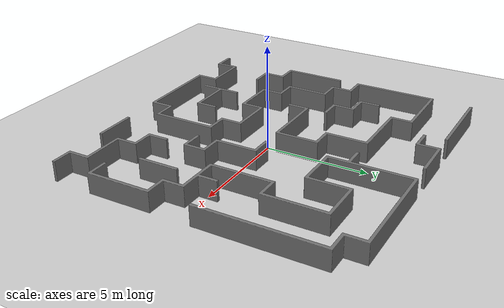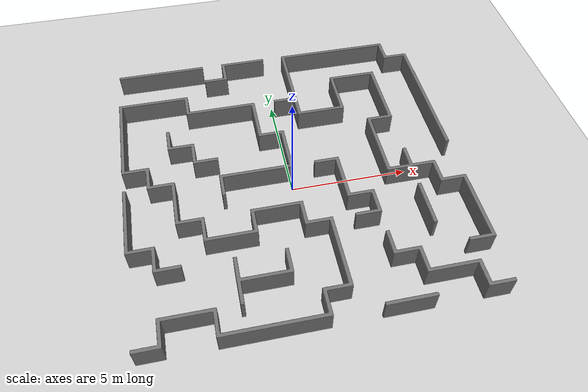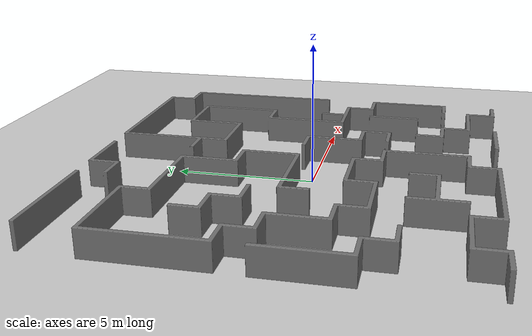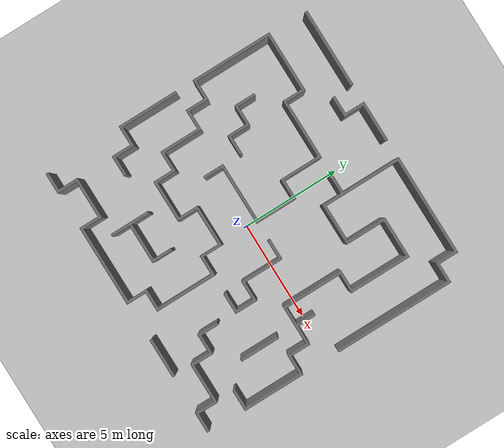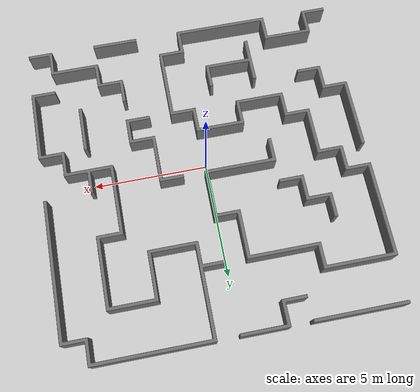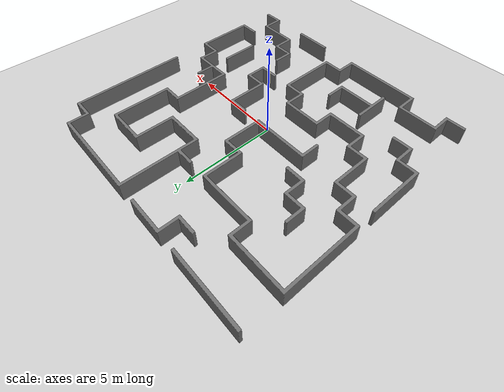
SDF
<?xml version="1.0" ?>
<sdf version="1.8">
  <world name="world_demo">
    <physics name="1ms" type="ignored">
      <max_step_size>0.001</max_step_size>
      <real_time_factor>1.0</real_time_factor>
    </physics>
    <plugin
      filename="gz-sim-physics-system"
      name="gz::sim::systems::Physics">
    </plugin>
    <plugin
      filename="gz-sim-user-commands-system"
      name="gz::sim::systems::UserCommands">
    </plugin>
    <plugin
      filename="gz-sim-scene-broadcaster-system"
      name="gz::sim::systems::SceneBroadcaster">
    </plugin>
    <plugin name='gz::sim::systems::Sensors' filename='gz-sim-sensors-system'>
      <render_engine>ogre2</render_engine>
    </plugin>
    <plugin name='gz::sim::systems::Imu' filename='gz-sim-imu-system'/>

    <include>
      <uri>models://Maze</uri>
      <pose>0 0 0 0 0 0</pose> <!-- posisjon og rotasjon i verden -->
    </include>

    <light type="directional" name="sun">
      <cast_shadows>true</cast_shadows>
      <pose>0 0 10 0 0 0</pose>
      <diffuse>0.8 0.8 0.8 1</diffuse>
      <specular>0.2 0.2 0.2 1</specular>
      <attenuation>
          <range>1000</range>
          <constant>0.9</constant>
          <linear>0.01</linear>
          <quadratic>0.001</quadratic>
      </attenuation>
      <direction>-0.5 0.1 -0.9</direction>
    </light>

    <model name='ground_plane'>
      <static>true</static>
      <link name='link'>
        <collision name='collision'>
          <geometry>
            <plane>
              <normal>0 0 1</normal>
              <size>100 100</size>
            </plane>
          </geometry>
          <surface>
            <friction>
              <ode/>
            </friction>
            <bounce/>
            <contact/>
          </surface>
        </collision>
        <visual name='visual'>
          <geometry>
            <plane>
              <normal>0 0 1</normal>
              <size>100 100</size>
            </plane>
          </geometry>
          <material>
            <ambient>0.8 0.8 0.8 1</ambient>
            <diffuse>0.8 0.8 0.8 1</diffuse>
            <specular>0.8 0.8 0.8 1</specular>
          </material>
        </visual>
        <pose>0 0 0 0 -0 0</pose>
        <inertial>
          <pose>0 0 0 0 -0 0</pose>
          <mass>1</mass>
          <inertia>
            <ixx>1</ixx>
            <ixy>0</ixy>
            <ixz>0</ixz>
            <iyy>1</iyy>
            <iyz>0</iyz>
            <izz>1</izz>
          </inertia>
        </inertial>
        <enable_wind>false</enable_wind>
      </link>
      <pose>0 0 0 0 -0 0</pose>
      <self_collide>false</self_collide>
    </model>

  </world>
</sdf>

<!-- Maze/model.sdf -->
<sdf version="1.8">
  <model name="Maze">
    <static>true</static>
    <link name="link">
      <visual name="Maze">
        <geometry>
          <mesh>
            <uri>meshes/model.dae</uri>
          </mesh>
        </geometry>
      </visual>
      <collision name="collision">
        <geometry>
          <mesh>
            <uri>meshes/model.dae</uri>
          </mesh>
        </geometry>
      </collision>
    </link>
  </model>
</sdf>
